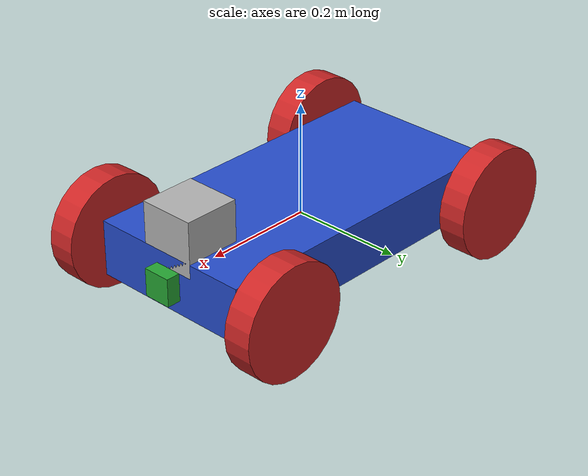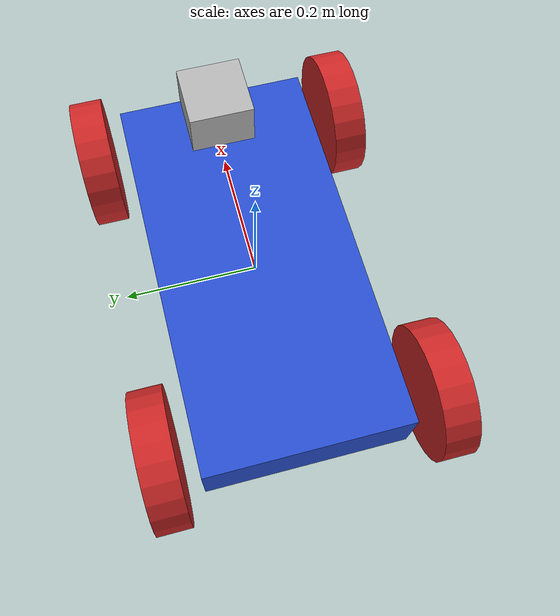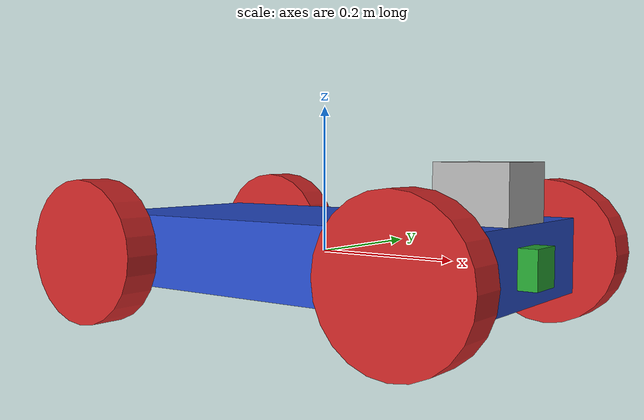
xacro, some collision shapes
<?xml version='1.0'?>

<robot name="my_robot" xmlns:xacro="http://www.ros.org/wiki/xacro">

  <!-- gazebo plugin files for sensors -->
  <xacro:include filename="$(find my_robot)/urdf/my_robot.gazebo" />

  <!-- model - chassis + wheels + camera + hokuyo lidar -->
  <link name="robot_footprint"></link>

  <joint name="robot_footprint_joint" type="fixed">
    <origin xyz="0 0 0" rpy="0 0 0" />
    <parent link="robot_footprint"/>
    <child link="chassis" />
  </joint>

  <link name='chassis'>
    <pose>0 0 0.1 0 0 0</pose>

    <inertial>
      <mass value="15.0"/>
      <origin xyz="0.0 0 0" rpy=" 0 0 0"/>
      <inertia
          ixx="0.1" ixy="0" ixz="0"
          iyy="0.1" iyz="0"
          izz="0.1"
      />
    </inertial>

    <collision name='collision'>
      <origin xyz="0 0 0" rpy=" 0 0 0"/>
      <geometry>
        <box size=".6 .3 .1"/>
      </geometry>
    </collision>

    <visual name='chassis_visual'>
      <origin xyz="0 0 0" rpy=" 0 0 0"/>
      <geometry>
        <box size=".6 .3 .1"/>
      </geometry>
    </visual>

  </link>

  <link name='left_front_wheel'>
    <pose>0 0 0.1 0 0 0</pose>

    <inertial>
      <mass value="5.0"/>
      <origin xyz="0.0 0 0" rpy=" 0 1.5707 1.5707"/>
      <inertia
          ixx="0.1" ixy="0" ixz="0"
          iyy="0.1" iyz="0"
          izz="0.1"
      />
    </inertial>

    <collision name='collision'>
      <origin xyz="0 0 0" rpy=" 0 1.5707 1.5707"/>
      <geometry>
        <cylinder length="0.05" radius="0.1"/>
      </geometry>
    </collision>

    <visual name='left_front_wheel_visual'>
      <origin xyz="0 0 0" rpy=" 0 1.5707 1.5707"/>
      <geometry>
        <cylinder length="0.05" radius="0.1"/>
      </geometry>
    </visual>

  </link>

  <joint type="continuous" name="left_front_wheel_hinge">
    <origin xyz="0.25 0.2 0" rpy="0 0 0"/>
    <child link="left_front_wheel"/>
    <parent link="chassis"/>
    <axis xyz="0 1 0" rpy="0 0 0"/>
    <limit effort="10000" velocity="1000"/>
    <dynamics damping="1.0" friction="1.0"/>
  </joint>

  <link name='left_rear_wheel'>
    <pose>0 0 0.1 0 0 0</pose>

    <inertial>
      <mass value="5.0"/>
      <origin xyz="0.0 0 0" rpy=" 0 1.5707 1.5707"/>
      <inertia
          ixx="0.1" ixy="0" ixz="0"
          iyy="0.1" iyz="0"
          izz="0.1"
      />
    </inertial>

    <collision name='collision'>
      <origin xyz="0 0 0" rpy=" 0 1.5707 1.5707"/>
      <geometry>
        <cylinder length="0.05" radius="0.1"/>
      </geometry>
    </collision>

    <visual name='left_rear_wheel_visual'>
      <origin xyz="0 0 0" rpy=" 0 1.5707 1.5707"/>
      <geometry>
        <cylinder length="0.05" radius="0.1"/>
      </geometry>
    </visual>

  </link>

  <joint type="continuous" name="left_rear_wheel_hinge">
    <origin xyz="-0.25 0.2 0" rpy="0 0 0"/>
    <child link="left_rear_wheel"/>
    <parent link="chassis"/>
    <axis xyz="0 1 0" rpy="0 0 0"/>
    <limit effort="10000" velocity="1000"/>
    <dynamics damping="1.0" friction="1.0"/>
  </joint>

  <link name='right_front_wheel'>
    <pose>0 0 0.1 0 0 0</pose>

    <inertial>
      <mass value="5.0"/>
      <origin xyz="0.0 0 0" rpy=" 0 1.5707 1.5707"/>
      <inertia
          ixx="0.1" ixy="0" ixz="0"
          iyy="0.1" iyz="0"
          izz="0.1"
      />
    </inertial>

    <collision name='collision'>
      <origin xyz="0 0 0" rpy=" 0 1.5707 1.5707"/>
      <geometry>
        <cylinder length="0.05" radius="0.1"/>
      </geometry>
    </collision>

    <visual name='right_front_wheel_visual'>
      <origin xyz="0 0 0" rpy=" 0 1.5707 1.5707"/>
      <geometry>
        <cylinder length="0.05" radius="0.1"/>
      </geometry>
    </visual>

  </link>

  <joint type="continuous" name="right_front_wheel_hinge">
    <origin xyz="0.25 -0.2 0" rpy="0 0 0"/>
    <child link="right_front_wheel"/>
    <parent link="chassis"/>
    <axis xyz="0 1 0" rpy="0 0 0"/>
    <limit effort="10000" velocity="1000"/>
    <dynamics damping="1.0" friction="1.0"/>
  </joint>

  <link name='right_rear_wheel'>
    <pose>0 0 0.1 0 0 0</pose>

    <inertial>
      <mass value="5.0"/>
      <origin xyz="0.0 0 0" rpy=" 0 1.5707 1.5707"/>
      <inertia
          ixx="0.1" ixy="0" ixz="0"
          iyy="0.1" iyz="0"
          izz="0.1"
      />
    </inertial>

    <collision name='collision'>
      <origin xyz="0 0 0" rpy=" 0 1.5707 1.5707"/>
      <geometry>
        <cylinder length="0.05" radius="0.1"/>
      </geometry>
    </collision>

    <visual name='right_rear_wheel_visual'>
      <origin xyz="0 0 0" rpy=" 0 1.5707 1.5707"/>
      <geometry>
        <cylinder length="0.05" radius="0.1"/>
      </geometry>
    </visual>

  </link>

  <joint type="continuous" name="right_rear_wheel_hinge">
    <origin xyz="-0.25 -0.2 0" rpy="0 0 0"/>
    <child link="right_rear_wheel"/>
    <parent link="chassis"/>
    <axis xyz="0 1 0" rpy="0 0 0"/>
    <limit effort="10000" velocity="1000"/>
    <dynamics damping="1.0" friction="1.0"/>
  </joint>

  <!-- camera -->
  <link name='camera'>
    <box_inertia m="0.1" x="0.05" y="0.05" z="0.05" />
    <pose>0 0 0 0 0 0</pose>

    <inertial>
      <mass value="0.1"/>
      <origin xyz="0.0 0 0" rpy=" 0 0 0"/>
      <inertia
          ixx="1e-6" ixy="0" ixz="0"
          iyy="1e-6" iyz="0"
          izz="1e-6"
      />
    </inertial>

    <collision name='collision'>
      <origin xyz="0 0 0" rpy=" 0 0 0"/>
      <geometry>
        <box size="0.05 0.05 0.05"/>
      </geometry>
    </collision>

    <visual name='camera_visual'>
      <origin xyz="0 0 0" rpy=" 0 0 0"/>
      <geometry>
        <box size="0.05 0.05 0.05"/>
      </geometry>
    </visual>

  </link>

  <joint type="fixed" name="camera_joint">
    <origin xyz="0.3 0 0" rpy="0 0 0"/>
    <child link="camera"/>
    <parent link="chassis"/>
    <axis xyz="0 1 0" rpy="0 0 0"/>
  </joint>

  <!-- hokuyo lidar -->
  <link name='hokuyo'>
    <pose>0 0 0 0 0 0</pose>

    <inertial>
      <mass value="1e-5"/>
      <origin xyz="0.0 0 0" rpy=" 0 0 0"/>
      <inertia
          ixx="1e-6" ixy="0" ixz="0"
          iyy="1e-6" iyz="0"
          izz="1e-6"
      />
    </inertial>

    <collision name='collision'>
      <origin xyz="0 0 0" rpy=" 0 0 0"/>
      <geometry>
        <box size="0.1 0.1 0.1"/>
      </geometry>
    </collision>

    <visual name='hokuyo_visual'>
      <origin xyz="0 0 0" rpy=" 0 0 0"/>
      <geometry>
        <mesh filename="package://my_robot/meshes/hokuyo.dae" scale="1 1 1"/>
      </geometry>
    </visual>

  </link>

  <joint type="fixed" name="hokuyo_joint">
    <origin xyz="0.25 0 0.075" rpy="0 0 0"/>
    <child link="hokuyo"/>
    <parent link="chassis"/>
    <axis xyz="0 1 0" rpy="0 0 0"/>
  </joint>

  <!-- Adding colours -->
  <gazebo reference="chassis">
    <material>Gazebo/Blue</material>
  </gazebo>

  <gazebo reference="left_front_wheel">
    <material>Gazebo/Red</material>
  </gazebo>

  <gazebo reference="right_front_wheel">
    <material>Gazebo/Red</material>
  </gazebo>

  <gazebo reference="left_rear_wheel">
    <material>Gazebo/Red</material>
  </gazebo>

  <gazebo reference="right_rear_wheel">
    <material>Gazebo/Red</material>
  </gazebo>

  <gazebo reference="camera">
    <material>Gazebo/Green</material>
  </gazebo>

</robot>
